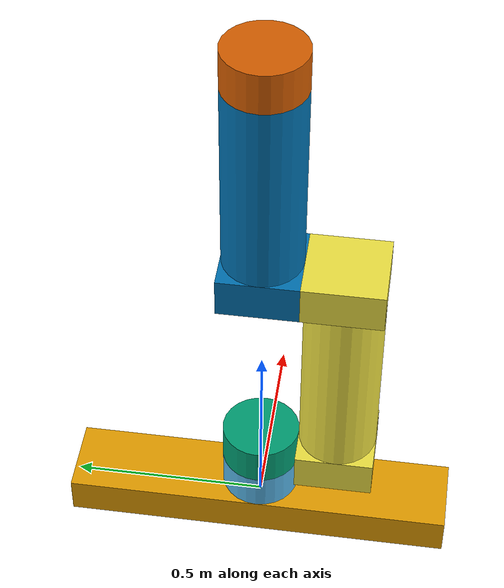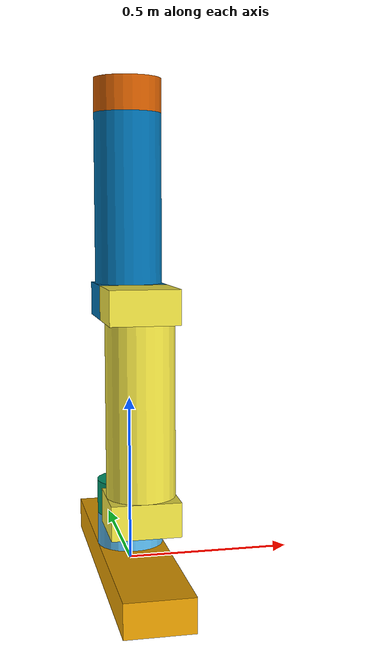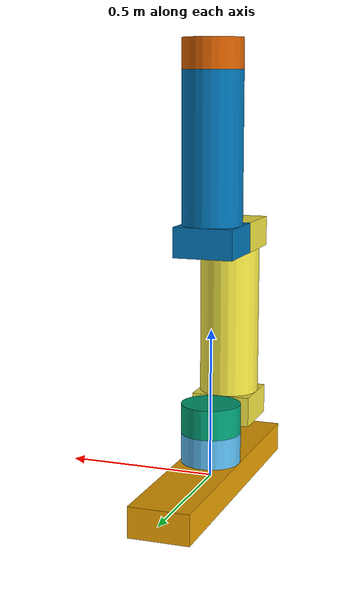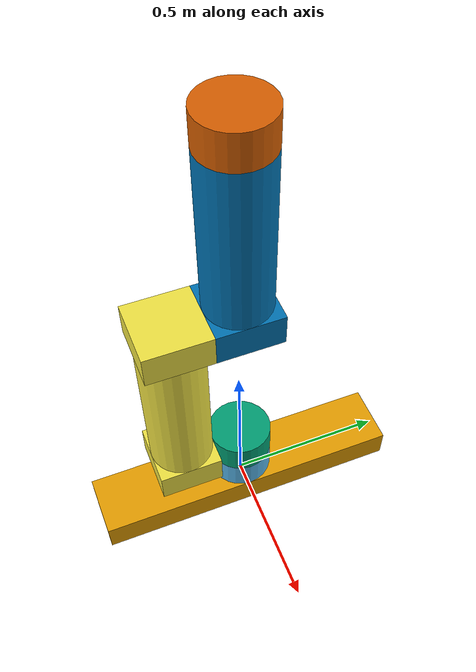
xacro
<?xml version="1.0"?>
<robot name="arm_robot" xmlns:xacro="http://www.ros.org/wiki/xacro">

  <!-- Properties -->
  <xacro:property name="density" value="2700"/>  <!-- Density in kg/m^3 -->

  <!-- Macro for calculating inertia for a box -->
  <xacro:macro name="inertia_box" params="mass x y z">
    <inertial>
      <mass value="${mass}"/>
      <origin rpy="0 0 0" xyz="0 0 0"/>
      <inertia
        ixx="${mass * (y*y + z*z) / 12.0}"
        iyy="${mass * (x*x + z*z) / 12.0}"
        izz="${mass * (x*x + y*y) / 12.0}"
        ixy="0.0"
        ixz="0.0"
        iyz="0.0" />
    </inertial>
  </xacro:macro>

  <!-- Macro for calculating inertia for a cylinder -->
  <xacro:macro name="inertia_cylinder" params="mass radius length">
    <inertial>
      <mass value="${mass}"/>
      <origin rpy="0 0 0" xyz="0 0 0"/>
      <inertia
        ixx="${mass * (3*radius*radius + length*length) / 12.0}"
        iyy="${mass * (3*radius*radius + length*length) / 12.0}"
        izz="${mass * radius*radius / 2.0}"
        ixy="0.0"
        ixz="0.0"
        iyz="0.0" />
    </inertial>
  </xacro:macro>

  <!-- Base Link -->
  <link name="base_link">
    <visual>
      <origin rpy="0 0 0" xyz="0 0 0"/>
      <geometry>
        <box size="0.2 1 0.1"/>
      </geometry>
    </visual>

    <collision>
      <origin rpy="0 0 0" xyz="0 0 0"/>
      <geometry>
        <box size="0.2 1 0.1"/>
      </geometry>
    </collision>
    <xacro:inertia_box mass="${density * 0.2 * 1 * 0.1}" x="0.2" y="1" z="0.1"/>
  </link>

  <!-- Prismatic Joint -->
  <joint name="arm1_p_joint" type="prismatic">
    <parent link="base_link"/>
    <child link="arm1_p_link"/>
    <origin rpy="0 0 0" xyz="0 0 0.1"/>
    <axis xyz="0 1 0"/>
    <limit lower="-0.4" upper="0.4" effort="50" velocity="0.2"/>
  </joint>

  <!-- First Prismatic Link -->
  <link name="arm1_p_link">
    <visual>
      <origin rpy="0 0 0" xyz="0 0 0"/>
      <geometry>
        <cylinder radius="0.1" length="0.1"/>
      </geometry>
    </visual>

    <collision>
      <origin rpy="0 0 0" xyz="0 0 0"/>
      <geometry>
        <cylinder radius="0.1" length="0.1"/>
      </geometry>
    </collision>
    <xacro:inertia_cylinder mass="${density * 3.14 * 0.1 * 0.1 * 0.1}" radius="0.1" length="0.1"/>
  </link>

  <!-- Revolute Joint -->
  <joint name="arm1_r_joint" type="revolute">
    <parent link="arm1_p_link"/>
    <child link="arm1_r_link"/>
    <origin rpy="0 0 0" xyz="0 0 0.1"/>
    <axis xyz="0 0 1"/>
    <limit lower="-3.14" upper="3.14" effort="50" velocity="1.0"/>
  </joint>

  <!-- First Revolute Link -->
  <link name="arm1_r_link">
    <visual>
      <origin rpy="0 0 0" xyz="0 0 0"/>
      <geometry>
        <cylinder radius="0.1" length="0.1"/>
      </geometry>
    </visual>
    <collision>
      <origin rpy="0 0 0" xyz="0 0 0"/>
      <geometry>
        <cylinder radius="0.1" length="0.1"/>
      </geometry>
    </collision>
    <xacro:inertia_cylinder mass="${density * 3.14 * 0.1 * 0.1 * 0.1}" radius="0.1" length="0.1"/>
  </link>

  <!-- Revolute Joint -->
  <joint name="arm2_joint" type="revolute">
    <parent link="arm1_r_link"/>
    <child link="arm2_link"/>
    <origin rpy="0 0 0" xyz="0 -0.2 0"/>
    <axis xyz="0 1 0"/>
    <limit lower="-3.14" upper="3.14" effort="50" velocity="1.0"/>
  </joint>

  <!-- Second Link -->
  <link name="arm2_link">
    <visual>
      <origin rpy="0 0 0" xyz="0 0 0"/>
      <geometry>
        <box size="0.2 0.2 0.1"/>
      </geometry>
    </visual>

    <visual>
      <origin rpy="0 0 0" xyz="0 0 0.3"/>
      <geometry>
        <cylinder radius="0.1" length="0.5"/>
      </geometry>
    </visual>

    <visual>
      <origin rpy="0 0 0" xyz="0 0 0.6"/>
      <geometry>
        <box size="0.2 0.2 0.1"/>
      </geometry>
    </visual>

    <collision>
      <origin rpy="0 0 0" xyz="0 0 0"/>
      <geometry>
        <box size="0.2 0.2 0.1"/>
      </geometry>
    </collision>

    <collision>
      <origin rpy="0 0 0" xyz="0 0 0.3"/>
      <geometry>
        <cylinder radius="0.1" length="0.5"/>
      </geometry>
    </collision>

    <collision>
      <origin rpy="0 0 0" xyz="0 0 0.6"/>
      <geometry>
        <box size="0.2 0.2 0.1"/>
      </geometry>
    </collision>

    <xacro:inertia_box mass="${density * 0.2 * 0.2 * 0.1}" x="0.2" y="0.2" z="0.1"/>
  </link>

  <!-- Revolute Joint -->
  <joint name="arm3_joint" type="revolute">
    <parent link="arm2_link"/>
    <child link="arm3_link"/>
    <origin rpy="0 0 0" xyz="0 0.2 0.6"/>
    <axis xyz="0 1 0"/>
    <limit lower="-3.14" upper="3.14" effort="50" velocity="1.0"/>
  </joint>

  <!-- Third Link -->
  <link name="arm3_link">
    <visual>
      <origin rpy="0 0 0" xyz="0 0 0"/>
      <geometry>
        <box size="0.2 0.2 0.1"/>
      </geometry>
    </visual>

    <visual>
      <origin rpy="0 0 0" xyz="0 0 0.3"/>
      <geometry>
        <cylinder radius="0.1" length="0.5"/>
      </geometry>
    </visual>

    <collision>
      <origin rpy="0 0 0" xyz="0 0 0"/>
      <geometry>
        <box size="0.2 0.2 0.1"/>
      </geometry>
    </collision>

    <collision>
      <origin rpy="0 0 0" xyz="0 0 0.3"/>
      <geometry>
        <cylinder radius="0.1" length="0.5"/>
      </geometry>
    </collision>
    <xacro:inertia_box mass="${density * 0.2 * 0.2 * 0.1}" x="0.2" y="0.2" z="0.1"/>
  </link>

  <!-- Prismatic Joint -->
  <joint name="arm4_joint" type="prismatic">
    <parent link="arm3_link"/>
    <child link="arm4_link"/>
    <origin rpy="0 0 0" xyz="0 0 0.3"/>
    <axis xyz="0 0 1"/>
    <limit lower="0" upper="0.5" effort="50" velocity="0.2"/>
  </joint>

  <!-- Fourth Link -->
  <link name="arm4_link">
    <visual>
      <origin rpy="0 0 0" xyz="0 0 0"/>
      <geometry>
        <cylinder radius="0.08" length="0.5"/>
      </geometry>
    </visual>

    <visual>
      <origin rpy="0 0 0" xyz="0 0 0.3"/>
      <geometry>
        <cylinder length="0.1" radius="0.1" />
      </geometry>
    </visual>

    <collision>
      <origin rpy="0 0 0" xyz="0 0 0"/>
      <geometry>
        <cylinder radius="0.08" length="0.5"/>
      </geometry>
    </collision>

    <collision>
      <origin rpy="0 0 0" xyz="0 0 0.3"/>
      <geometry>
        <cylinder length="0.1" radius="0.1" />
      </geometry>
    </collision>

    <xacro:inertia_cylinder mass="${density * 3.14 * 0.08 * 0.08 * 0.5}" radius="0.08" length="0.5"/>
  </link>

  <!-- Fixed Joint for Tool -->
  <joint name="tool_joint" type="fixed">
    <parent link="arm4_link"/>
    <child link="tool_link"/>
    <origin rpy="0 0 0" xyz="0 0 0.3"/>
  </joint>

  <link name="tool_link"/>

  <!-- Transmissions -->
  <transmission name="trans_arm1_p_joint">
    <type>transmission_interface/SimpleTransmission</type>
    <joint name="arm1_p_joint">
      <hardwareInterface>hardware_interface/EffortJointInterface</hardwareInterface>
    </joint>
    <actuator name="actuator_arm1_p">
      <mechanicalReduction>1</mechanicalReduction>
    </actuator>
  </transmission>

  <transmission name="trans_arm1_r_joint">
    <type>transmission_interface/SimpleTransmission</type>
    <joint name="arm1_r_joint">
      <hardwareInterface>hardware_interface/EffortJointInterface</hardwareInterface>
    </joint>
    <actuator name="actuator_arm1_r">
      <mechanicalReduction>1</mechanicalReduction>
    </actuator>
  </transmission>

  <transmission name="trans_arm2_joint">
    <type>transmission_interface/SimpleTransmission</type>
    <joint name="arm2_joint">
      <hardwareInterface>hardware_interface/EffortJointInterface</hardwareInterface>
    </joint>
    <actuator name="actuator_arm2">
      <mechanicalReduction>1</mechanicalReduction>
    </actuator>
  </transmission>

  <transmission name="trans_arm3_joint">
    <type>transmission_interface/SimpleTransmission</type>
    <joint name="arm3_joint">
      <hardwareInterface>hardware_interface/EffortJointInterface</hardwareInterface>
    </joint>
    <actuator name="actuator_arm3">
      <mechanicalReduction>1</mechanicalReduction>
    </actuator>
  </transmission>

  <transmission name="trans_arm4_joint">
    <type>transmission_interface/SimpleTransmission</type>
    <joint name="arm4_joint">
      <hardwareInterface>hardware_interface/EffortJointInterface</hardwareInterface>
    </joint>
    <actuator name="actuator_arm4">
      <mechanicalReduction>1</mechanicalReduction>
    </actuator>
  </transmission>

</robot>
